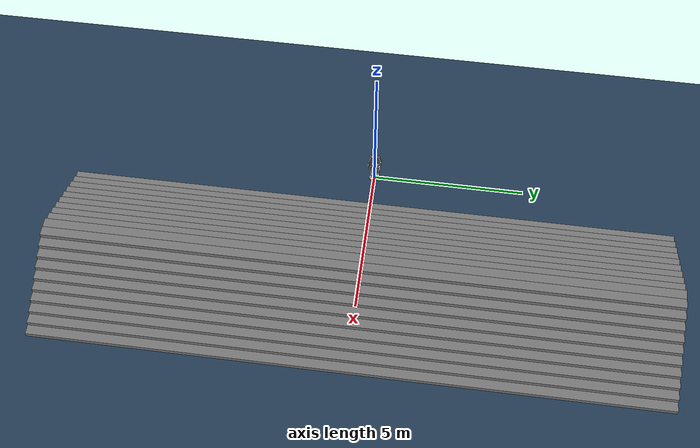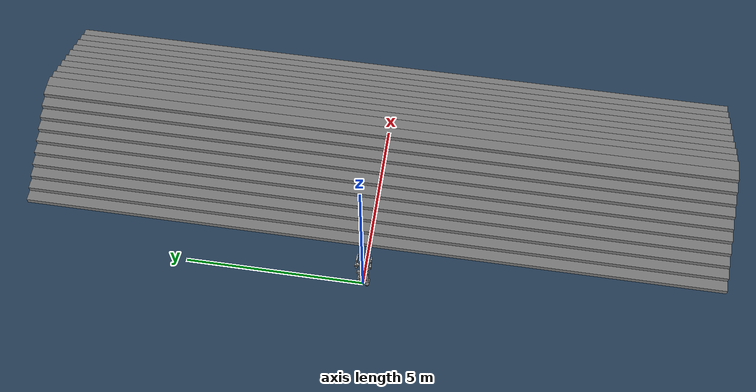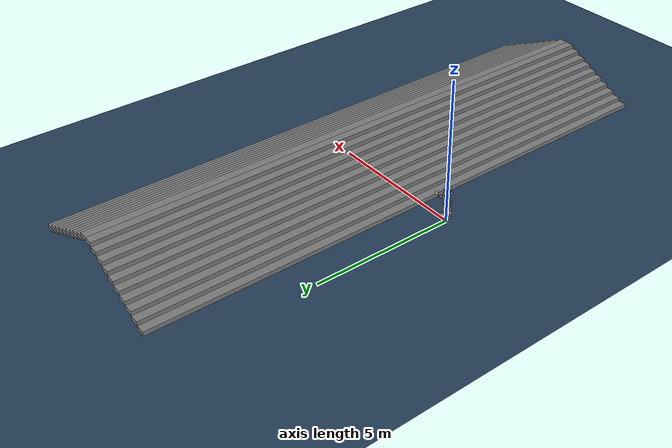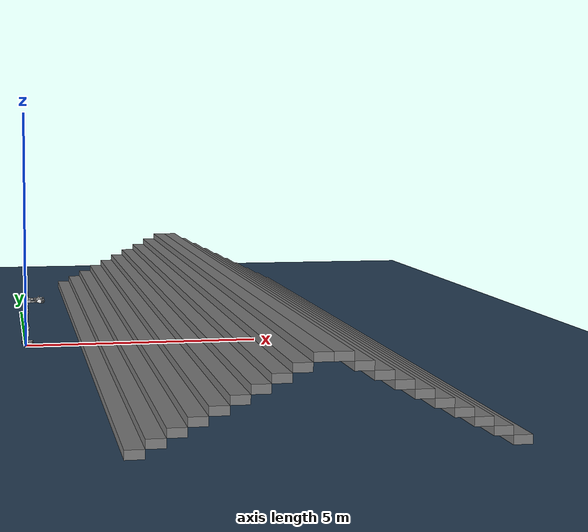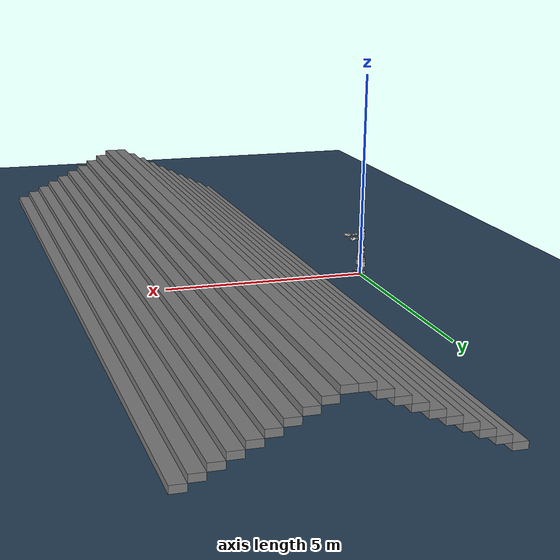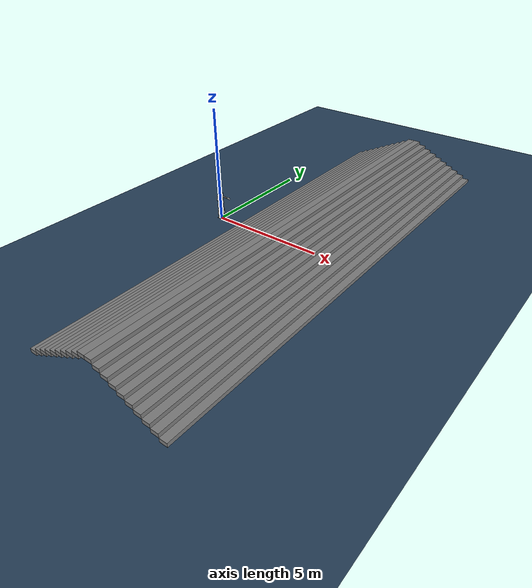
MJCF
<mujoco model="ym1_16dof pit scene">
  <include file="ym1_16dof.xml" />

  <statistic center="0 0 0.5" extent="2.0" />

  <visual>
    <headlight diffuse="0.6 0.6 0.6" ambient="0.3 0.3 0.3" specular="0 0 0" />
    <rgba haze="0.15 0.25 0.35 1" />
    <global azimuth="-130" elevation="-20" />
  </visual>

  <asset>
    <texture type="skybox" builtin="gradient" rgb1="0.3 0.5 0.7" rgb2="0 0 0" width="512" height="3072" />
    <texture type="2d" name="groundplane" builtin="checker" mark="edge" rgb1="0.2 0.3 0.4" rgb2="0.1 0.2 0.3" markrgb="0.8 0.8 0.8" width="300" height="300" />
    <material name="groundplane" texture="groundplane" texuniform="true" texrepeat="5 5" reflectance="0.2" />
  </asset>

  <worldbody>
    <light pos="0 0 1.5" dir="0 0 -1" directional="true" />
    <geom name="floor" size="0 0 0.05" type="plane" material="groundplane" />
  <geom pos="1.31 0.0 0.075" type="box" size="0.155 10.0 0.075" quat="1.0 0.0 0.0 0.0" /><geom pos="1.62 0.0 0.22499999999999998" type="box" size="0.155 10.0 0.075" quat="1.0 0.0 0.0 0.0" /><geom pos="1.93 0.0 0.375" type="box" size="0.155 10.0 0.075" quat="1.0 0.0 0.0 0.0" /><geom pos="2.24 0.0 0.525" type="box" size="0.155 10.0 0.075" quat="1.0 0.0 0.0 0.0" /><geom pos="2.55 0.0 0.675" type="box" size="0.155 10.0 0.075" quat="1.0 0.0 0.0 0.0" /><geom pos="2.8600000000000003 0.0 0.8250000000000001" type="box" size="0.155 10.0 0.075" quat="1.0 0.0 0.0 0.0" /><geom pos="3.17 0.0 0.9750000000000001" type="box" size="0.155 10.0 0.075" quat="1.0 0.0 0.0 0.0" /><geom pos="3.48 0.0 1.125" type="box" size="0.155 10.0 0.075" quat="1.0 0.0 0.0 0.0" /><geom pos="3.79 0.0 1.275" type="box" size="0.155 10.0 0.075" quat="1.0 0.0 0.0 0.0" /><geom pos="4.1 0.0 1.4249999999999998" type="box" size="0.155 10.0 0.075" quat="1.0 0.0 0.0 0.0" /><geom pos="7.200000000001091 8.226128359393462e-07 0.075" type="box" size="0.155 10.0 0.075" quat="1.3267948966775328e-06 0.0 0.0 0.9999999999991198" /><geom pos="6.890000000002183 1.6452256718786925e-06 0.22499999999999998" type="box" size="0.155 10.0 0.075" quat="1.3267948966775328e-06 0.0 0.0 0.9999999999991198" /><geom pos="6.580000000003274 2.4678385078180385e-06 0.375" type="box" size="0.155 10.0 0.075" quat="1.3267948966775328e-06 0.0 0.0 0.9999999999991198" /><geom pos="6.270000000004366 3.290451343757385e-06 0.525" type="box" size="0.155 10.0 0.075" quat="1.3267948966775328e-06 0.0 0.0 0.9999999999991198" /><geom pos="5.960000000005457 4.1130641796967314e-06 0.675" type="box" size="0.155 10.0 0.075" quat="1.3267948966775328e-06 0.0 0.0 0.9999999999991198" /><geom pos="5.650000000006548 4.935677015636078e-06 0.8250000000000001" type="box" size="0.155 10.0 0.075" quat="1.3267948966775328e-06 0.0 0.0 0.9999999999991198" /><geom pos="5.34000000000764 5.7582898515754235e-06 0.9750000000000001" type="box" size="0.155 10.0 0.075" quat="1.3267948966775328e-06 0.0 0.0 0.9999999999991198" /><geom pos="5.030000000008731 6.58090268751477e-06 1.125" type="box" size="0.155 10.0 0.075" quat="1.3267948966775328e-06 0.0 0.0 0.9999999999991198" /><geom pos="4.720000000009822 7.403515523454116e-06 1.275" type="box" size="0.155 10.0 0.075" quat="1.3267948966775328e-06 0.0 0.0 0.9999999999991198" /><geom pos="4.410000000010914 8.226128359393463e-06 1.4249999999999998" type="box" size="0.155 10.0 0.075" quat="1.3267948966775328e-06 0.0 0.0 0.9999999999991198" /></worldbody>
</mujoco>

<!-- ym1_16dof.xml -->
<mujoco model="ym1_16dof">
  <compiler angle="radian" meshdir="meshes" autolimits="true"/>

  <option iterations='50' solver='PGS' gravity='0 0 -9.81'>
    <flag frictionloss="enable"/>
  </option>

  <default>
    <joint damping="0.001" armature="0.01" frictionloss="0.1"/>
  </default>

  <asset>
    <mesh name="pelvis" file="base_link.STL"/>
    <mesh name="torso" file="waist_yaw_link.STL"/>
    <mesh name="left_leg_pitch_link" file="left_leg_pitch_link.STL"/>
    <mesh name="left_leg_roll_link" file="left_leg_roll_link.STL"/>
    <mesh name="left_leg_yaw_link" file="left_leg_yaw_link.STL"/>
    <mesh name="left_knee_pitch_link" file="left_knee_pitch_link.STL"/>
    <mesh name="left_ankle_pitch_link" file="left_ankle_pitch_link.STL"/>
    <mesh name="left_ankle_roll_link" file="left_ankle_roll_link.STL"/>
    <mesh name="right_leg_pitch_link" file="right_leg_pitch_link.STL"/>
    <mesh name="right_leg_roll_link" file="right_leg_roll_link.STL"/>
    <mesh name="right_leg_yaw_link" file="right_leg_yaw_link.STL"/>
    <mesh name="right_knee_pitch_link" file="right_knee_pitch_link.STL"/>
    <mesh name="right_ankle_pitch_link" file="right_ankle_pitch_link.STL"/>
    <mesh name="right_ankle_roll_link" file="right_ankle_roll_link.STL"/>
    <mesh name="left_shoulder_pitch_link" file="left_shoulder_pitch_link.STL"/>
    <mesh name="left_shoulder_roll_link" file="left_shoulder_roll_link.STL"/>
    <mesh name="left_shoulder_yaw_link" file="left_shoulder_yaw_link.STL"/>
    <mesh name="left_elbow_pitch_link" file="left_elbow_pitch_link.STL"/>
    <mesh name="left_elbow_roll_link" file="left_elbow_roll_link.STL"/>
    <mesh name="left_wrist_pitch_link" file="left_wrist_pitch_link.STL"/>
    <mesh name="left_wrist_yaw_link" file="left_wrist_yaw_link.STL"/>
    <mesh name="right_shoulder_pitch_link" file="right_shoulder_pitch_link.STL"/>
    <mesh name="right_shoulder_roll_link" file="right_shoulder_roll_link.STL"/>
    <mesh name="right_shoulder_yaw_link" file="right_shoulder_yaw_link.STL"/>
    <mesh name="right_elbow_pitch_link" file="right_elbow_pitch_link.STL"/>
    <mesh name="right_elbow_roll_link" file="right_elbow_roll_link.STL"/>
    <mesh name="right_wrist_pitch_link" file="right_wrist_pitch_link.STL"/>
    <mesh name="right_wrist_yaw_link" file="right_wrist_yaw_link.STL"/>
  </asset>

  <worldbody>
    <body name="pelvis" pos="0 0 0.78">
      <camera name="depth_cam"
        pos="0.0576235 0.01753 0.42987"
        euler="0 -0.79 0"
        fovy="79.3"
        mode="fixed"/>
      <inertial pos="4.6721e-06 -2.3326e-07 -0.030542" mass="3.13"
                diaginertia="0.010908 0.010341 0.006614"/>
      <joint name="floating_base_joint" type="free" limited="false" actuatorfrclimited="false"/>
      <geom type="mesh" contype="0" conaffinity="0" group="1" density="0" rgba="0.77 0.75 0.73 1" mesh="pelvis"/>

      <!-- Torso (fixed to pelvis) -->
      <geom pos="0 0 0.05725" type="mesh" contype="0" conaffinity="0" group="1" density="0" rgba="0.7 0.7 0.7 1" mesh="torso"/>
      <geom pos="0 0 0.20725" type="box" size="0.05 0.075 0.1" rgba="0.7 0.7 0.7 1"/>

      <!-- Left Leg -->
      <body name="left_leg_pitch_link" pos="0 0.057 -0.06025">
        <inertial pos="-0.0022424 0.052941 0.0018571" mass="1.06"
                  diaginertia="0.0019452 0.0012366 0.0015468"/>
        <joint name="left_leg_pitch_joint" pos="0 0 0" axis="0 1 0" range="-2.792 2.792" actuatorfrcrange="-90 90"/>
        <geom type="mesh" contype="0" conaffinity="0" group="1" density="0" rgba="0.7 0.7 0.7 1" mesh="left_leg_pitch_link"/>

        <body name="left_leg_roll_link" pos="0 0.06 0">
          <inertial pos="0.002441 3.17e-05 -0.092183" mass="0.8"
                    diaginertia="0.0015404 0.001629 0.00094122"/>
          <joint name="left_leg_roll_joint" pos="0 0 0" axis="1 0 0" range="-0.087 3.037" actuatorfrcrange="-90 90"/>
          <geom type="mesh" contype="0" conaffinity="0" group="1" density="0" rgba="0.7 0.7 0.7 1" mesh="left_leg_roll_link"/>
          <geom type="mesh" rgba="0.7 0.7 0.7 1" mesh="left_leg_roll_link"/>

          <body name="left_leg_yaw_link" pos="0 0 -0.127">
            <inertial pos="0.0010862 -0.00087371 -0.15709" mass="2.93"
                      diaginertia="0.0082847 0.009843 0.0036644"/>
            <joint name="left_leg_yaw_joint" pos="0 0 0" axis="0 0 1" range="-2.269 2.269" actuatorfrcrange="-60 60"/>
            <geom type="mesh" contype="0" conaffinity="0" group="1" density="0" rgba="0.7 0.7 0.7 1" mesh="left_leg_yaw_link"/>
            <geom type="mesh" rgba="0.7 0.7 0.7 1" mesh="left_leg_yaw_link"/>

            <body name="left_knee_pitch_link" pos="0 0 -0.173">
              <inertial pos="-0.0032204 0.0014598 -0.13449" mass="2.19"
                        diaginertia="0.016813 0.017944 0.0029858"/>
              <joint name="left_knee_pitch_joint" pos="0 0 0" axis="0 1 0" range="-0.052 2.618" actuatorfrcrange="-150 150"/>
              <geom type="mesh" contype="0" conaffinity="0" group="1" density="0" rgba="0.7 0.7 0.7 1" mesh="left_knee_pitch_link"/>
              <geom pos="0 0 -0.13" type="box" size="0.065 0.035 0.07" rgba="0.7 0.7 0.7 1"/>

              <body name="left_ankle_pitch_link" pos="0 0 -0.3">
                <inertial pos="0 0 0" mass="0.16" diaginertia="0.03 0.03 0.03"/>
                <joint name="left_ankle_pitch_joint" pos="0 0 0" axis="0 1 0" range="-2.094 2.094" actuatorfrcrange="-36 36"/>
                <geom type="mesh" contype="0" conaffinity="0" group="1" density="0" rgba="0.7 0.7 0.7 1" mesh="left_ankle_pitch_link"/>

                <body name="left_ankle_roll_link" pos="0 0 0">
                  <inertial pos="0.018367 0 -0.022988" mass="1.01" diaginertia="0.01 0.01 0.01"/>
                  <joint name="left_ankle_roll_joint" pos="0 0 0" axis="1 0 0" range="-0.349 0.349" actuatorfrcrange="-36 36"/>
                  <geom type="mesh" contype="0" conaffinity="0" group="1" density="0" rgba="0.7 0.7 0.7 1" mesh="left_ankle_roll_link"/>
                  <geom size="0.055 0.05 0.005" pos="0.0925 0 -0.038" type="box" rgba="0.2 0.2 0.2 1"/>
                  <geom size="0.065 0.04 0.005" pos="-0.0285 0 -0.038" type="box" rgba="0.2 0.2 0.2 1"/>

                </body>
              </body>
            </body>
          </body>
        </body>
      </body>

      <!-- Right Leg -->
      <body name="right_leg_pitch_link" pos="0 -0.057 -0.06025">
        <inertial pos="-0.0022424 -0.052767 0.0018571" mass="1.06"
                  diaginertia="0.0019426 0.0012366 0.0015442"/>
        <joint name="right_leg_pitch_joint" pos="0 0 0" axis="0 1 0" range="-2.792 2.792" actuatorfrcrange="-90 90"/>
        <geom type="mesh" contype="0" conaffinity="0" group="1" density="0" rgba="0.7 0.7 0.7 1" mesh="right_leg_pitch_link"/>

        <body name="right_leg_roll_link" pos="0 -0.06 0">
          <inertial pos="0.002441 3.17e-05 -0.092183" mass="0.8"
                    diaginertia="0.0015404 0.001629 0.00094122"/>
          <joint name="right_leg_roll_joint" pos="0 0 0" axis="1 0 0" range="-3.037 0.087" actuatorfrcrange="-90 90"/>
          <geom type="mesh" contype="0" conaffinity="0" group="1" density="0" rgba="0.7 0.7 0.7 1" mesh="right_leg_roll_link"/>
          <geom type="mesh" rgba="0.7 0.7 0.7 1" mesh="right_leg_roll_link"/>

          <body name="right_leg_yaw_link" pos="0 0 -0.127">
            <inertial pos="0.0010862 0.00087371 -0.15709" mass="2.93"
                      diaginertia="0.0082847 0.009843 0.0036644"/>
            <joint name="right_leg_yaw_joint" pos="0 0 0" axis="0 0 1" range="-2.269 2.269" actuatorfrcrange="-60 60"/>
            <geom type="mesh" contype="0" conaffinity="0" group="1" density="0" rgba="0.7 0.7 0.7 1" mesh="right_leg_yaw_link"/>
            <geom type="mesh" rgba="0.7 0.7 0.7 1" mesh="right_leg_yaw_link"/>

            <body name="right_knee_pitch_link" pos="0 0 -0.173">
              <inertial pos="-0.0032204 -0.0014598 -0.13449" mass="2.19"
                        diaginertia="0.016812 0.017943 0.0029855"/>
              <joint name="right_knee_pitch_joint" pos="0 0 0" axis="0 1 0" range="-0.052 2.618" actuatorfrcrange="-150 150"/>
              <geom type="mesh" contype="0" conaffinity="0" group="1" density="0" rgba="0.7 0.7 0.7 1" mesh="right_knee_pitch_link"/>
              <geom pos="0 0 -0.13" type="box" size="0.065 0.035 0.07" rgba="0.7 0.7 0.7 1"/>

              <body name="right_ankle_pitch_link" pos="0 0 -0.3">
                <inertial pos="0 0 0" mass="0.16" diaginertia="0.03 0.03 0.03"/>
                <joint name="right_ankle_pitch_joint" pos="0 0 0" axis="0 1 0" range="-2.094 2.094" actuatorfrcrange="-36 36"/>
                <geom type="mesh" contype="0" conaffinity="0" group="1" density="0" rgba="0.7 0.7 0.7 1" mesh="right_ankle_pitch_link"/>

                <body name="right_ankle_roll_link" pos="0 0 0">
                  <inertial pos="0.018366 0 -0.023002" mass="1.01" diaginertia="0.01 0.01 0.01"/>
                  <joint name="right_ankle_roll_joint" pos="0 0 0" axis="1 0 0" range="-0.349 0.349" actuatorfrcrange="-36 36"/>
                  <geom type="mesh" contype="0" conaffinity="0" group="1" density="0" rgba="0.7 0.7 0.7 1" mesh="right_ankle_roll_link"/>
                  <geom size="0.055 0.05 0.005" pos="0.0925 0 -0.038" type="box" rgba="0.2 0.2 0.2 1"/>
                  <geom size="0.065 0.04 0.005" pos="-0.0285 0 -0.038" type="box" rgba="0.2 0.2 0.2 1"/>
                </body>
              </body>
            </body>
          </body>
        </body>
      </body>

      <!-- Left Arm -->
      <body name="left_shoulder_pitch_link" pos="0 0.079102 0.37797" quat="0.991 0.131 0 0">
        <inertial pos="0.0074125 0.055258 2.03e-05" mass="0.51"
                  diaginertia="0.00040726 0.00033867 0.00048429"/>
        <joint name="left_shoulder_pitch_joint" pos="0 0 0" axis="0 1 0" range="-1.57 1.57" actuatorfrcrange="-60 60"/>
        <geom type="mesh" contype="0" conaffinity="0" group="1" density="0" rgba="0.7 0.7 0.7 1" mesh="left_shoulder_pitch_link"/>
        <geom pos="0 0.064 0" quat="0.991 -0.131 0 0" type="mesh" contype="0" conaffinity="0" group="1" density="0" rgba="0.7 0.7 0.7 1" mesh="left_shoulder_roll_link"/>
        <geom pos="0.00013761 0.064 -0.103" quat="0.991 -0.131 0 0" type="mesh" contype="0" conaffinity="0" group="1" density="0" rgba="0.7 0.7 0.7 1" mesh="left_shoulder_yaw_link"/>

        <body name="left_elbow_pitch_link" pos="0 0.064 -0.2" quat="0.991 -0.131 0 0">
          <inertial pos="0.073356 0.0084377 7.54e-06" mass="0.64"
                    diaginertia="0.00039885 0.00064086 0.00071392"/>
          <joint name="left_elbow_pitch_joint" pos="0 0 0" axis="0 1 0" range="-1.57 1.57" actuatorfrcrange="-36 36"/>
          <geom type="mesh" contype="0" conaffinity="0" group="1" density="0" rgba="0.7 0.7 0.7 1" mesh="left_elbow_pitch_link"/>
          <geom type="mesh" rgba="0.7 0.7 0.7 1" mesh="left_elbow_pitch_link"/>
          <geom pos="0.103 -0.00013761 0" type="mesh" contype="0" conaffinity="0" group="1" density="0" rgba="0.7 0.7 0.7 1" mesh="left_elbow_roll_link"/>
          <geom pos="0.2 0 0" type="mesh" contype="0" conaffinity="0" group="1" density="0" rgba="0.7 0.7 0.7 1" mesh="left_wrist_pitch_link"/>
          <geom pos="0.2 0 0" type="mesh" contype="0" conaffinity="0" group="1" density="0" rgba="1 1 1 1" mesh="left_wrist_yaw_link"/>
        </body>
      </body>

      <!-- Right Arm -->
      <body name="right_shoulder_pitch_link" pos="0 -0.079102 0.37797" quat="0.991 -0.131 0 0">
        <inertial pos="0.0074125 -0.055258 1.602e-05" mass="0.51"
                  diaginertia="0.00040726 0.00033867 0.00048429"/>
        <joint name="right_shoulder_pitch_joint" pos="0 0 0" axis="0 1 0" range="-1.57 1.57" actuatorfrcrange="-60 60"/>
        <geom type="mesh" contype="0" conaffinity="0" group="1" density="0" rgba="0.7 0.7 0.7 1" mesh="right_shoulder_pitch_link"/>
        <geom pos="0 -0.064 0" quat="0.991 0.131 0 0" type="mesh" contype="0" conaffinity="0" group="1" density="0" rgba="0.7 0.7 0.7 1" mesh="right_shoulder_roll_link"/>
        <geom pos="0.00013761 -0.064 -0.103" quat="0.991 0.131 0 0" type="mesh" contype="0" conaffinity="0" group="1" density="0" rgba="0.7 0.7 0.7 1" mesh="right_shoulder_yaw_link"/>

        <body name="right_elbow_pitch_link" pos="0 -0.064 -0.2" quat="0.991 0.131 0 0">
          <inertial pos="0.073356 -0.0084377 7.54e-06" mass="0.64"
                    diaginertia="0.00039885 0.00064086 0.00071392"/>
          <joint name="right_elbow_pitch_joint" pos="0 0 0" axis="0 1 0" range="-1.57 1.57" actuatorfrcrange="-36 36"/>
          <geom type="mesh" contype="0" conaffinity="0" group="1" density="0" rgba="0.7 0.7 0.7 1" mesh="right_elbow_pitch_link"/>
          <geom type="mesh" rgba="0.7 0.7 0.7 1" mesh="right_elbow_pitch_link"/>
          <geom pos="0.103 0.00013761 0" type="mesh" contype="0" conaffinity="0" group="1" density="0" rgba="0.7 0.7 0.7 1" mesh="right_elbow_roll_link"/>
          <geom pos="0.2 0 0" type="mesh" contype="0" conaffinity="0" group="1" density="0" rgba="0.7 0.7 0.7 1" mesh="right_wrist_pitch_link"/>
          <geom pos="0.2 0 0" type="mesh" contype="0" conaffinity="0" group="1" density="0" rgba="1 1 1 1" mesh="right_wrist_yaw_link"/>
        </body>
      </body>
    </body>
  </worldbody>

  <actuator>
    <motor name="left_leg_pitch_joint" joint="left_leg_pitch_joint"/>
    <motor name="left_leg_roll_joint" joint="left_leg_roll_joint"/>
    <motor name="left_leg_yaw_joint" joint="left_leg_yaw_joint"/>
    <motor name="left_knee_pitch_joint" joint="left_knee_pitch_joint"/>
    <motor name="left_ankle_pitch_joint" joint="left_ankle_pitch_joint"/>
    <motor name="left_ankle_roll_joint" joint="left_ankle_roll_joint"/>
    <motor name="right_leg_pitch_joint" joint="right_leg_pitch_joint"/>
    <motor name="right_leg_roll_joint" joint="right_leg_roll_joint"/>
    <motor name="right_leg_yaw_joint" joint="right_leg_yaw_joint"/>
    <motor name="right_knee_pitch_joint" joint="right_knee_pitch_joint"/>
    <motor name="right_ankle_pitch_joint" joint="right_ankle_pitch_joint"/>
    <motor name="right_ankle_roll_joint" joint="right_ankle_roll_joint"/>
    <motor name="left_shoulder_pitch_joint" joint="left_shoulder_pitch_joint"/>
    <motor name="left_elbow_pitch_joint" joint="left_elbow_pitch_joint"/>
    <motor name="right_shoulder_pitch_joint" joint="right_shoulder_pitch_joint"/>
    <motor name="right_elbow_pitch_joint" joint="right_elbow_pitch_joint"/>
  </actuator>

</mujoco>
